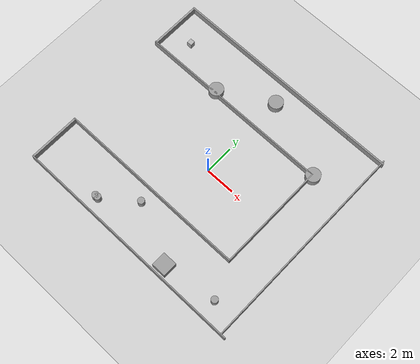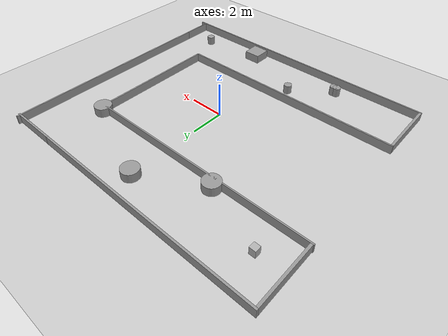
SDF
<sdf version="1.6">
 <world name="rubi_gazebo_legacy_policy_mid360_imu_world">
  <physics name="default_physics" default="1" type="ode">
   <max_step_size>0.002</max_step_size>
   <real_time_factor>1</real_time_factor>
   <real_time_update_rate>500</real_time_update_rate>
   <ode>
    <solver>
     <type>quick</type>
     <iters>100</iters>
     <sor>1.0</sor>
     <use_dynamic_moi_rescaling>false</use_dynamic_moi_rescaling>
    </solver>
   </ode>
  </physics>
  <model name="box">
   <pose>-7 5.7 0.2 0 0 0</pose>
   <static>true</static>
   <link name="box_link">
    <collision name="box_collision"><geometry><box><size>0.35 0.35 0.45</size></box></geometry></collision>
    <visual name="box_visual">
     <geometry><box><size>0.35 0.35 0.45</size></box></geometry>
     <material><ambient>0.7 0.7 0.7 1</ambient><diffuse>0.7 0.7 0.7 1</diffuse></material>
    </visual>
   </link>
  </model>
  <include><uri>model://ground_plane</uri></include>
  <include><uri>model://sun</uri></include>
  <include><uri>model://corridor_nav</uri><name>corridor_nav</name><static>true</static></include>
 </world>
</sdf>

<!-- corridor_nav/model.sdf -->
<sdf version='1.7'>
  <model name='corridor_nav'>
    <link name='link_0'>
      <inertial>
        <mass>0.482757</mass>
        <inertia>
          <ixx>0.528154</ixx>
          <ixy>0</ixy>
          <ixz>0</ixz>
          <iyy>0.0410034</iyy>
          <iyz>0</iyz>
          <izz>0.488698</izz>
        </inertia>
        <pose>0 0 0 0 -0 0</pose>
      </inertial>
      <pose>-8.60853 5.88257 0 0 -0 0</pose>
      <visual name='visual'>
        <pose>0 0 0 0 -0 0</pose>
        <geometry>
          <box>
            <size>0.138676 3.48259 1</size>
          </box>
        </geometry>
        <material>
          <lighting>1</lighting>
          <script>
            <uri>file://media/materials/scripts/gazebo.material</uri>
            <name>Gazebo/Grey</name>
          </script>
          <shader type='pixel'/>
        </material>
        <transparency>0</transparency>
        <cast_shadows>1</cast_shadows>
      </visual>
      <collision name='collision'>
        <laser_retro>0</laser_retro>
        <max_contacts>10</max_contacts>
        <pose>0 0 0 0 -0 0</pose>
        <geometry>
          <box>
            <size>0.138676 3.48259 1</size>
          </box>
        </geometry>
        <surface>
          <friction>
            <ode>
              <mu>1</mu>
              <mu2>1</mu2>
              <fdir1>0 0 0</fdir1>
              <slip1>0</slip1>
              <slip2>0</slip2>
            </ode>
            <torsional>
              <coefficient>1</coefficient>
              <patch_radius>0</patch_radius>
              <surface_radius>0</surface_radius>
              <use_patch_radius>1</use_patch_radius>
              <ode>
                <slip>0</slip>
              </ode>
            </torsional>
          </friction>
          <bounce>
            <restitution_coefficient>0</restitution_coefficient>
            <threshold>1e+06</threshold>
          </bounce>
          <contact>
            <collide_without_contact>0</collide_without_contact>
            <collide_without_contact_bitmask>1</collide_without_contact_bitmask>
            <collide_bitmask>1</collide_bitmask>
            <ode>
              <soft_cfm>0</soft_cfm>
              <soft_erp>0.2</soft_erp>
              <kp>1e+13</kp>
              <kd>1</kd>
              <max_vel>0.01</max_vel>
              <min_depth>0</min_depth>
            </ode>
            <bullet>
              <split_impulse>1</split_impulse>
              <split_impulse_penetration_threshold>-0.01</split_impulse_penetration_threshold>
              <soft_cfm>0</soft_cfm>
              <soft_erp>0.2</soft_erp>
              <kp>1e+13</kp>
              <kd>1</kd>
            </bullet>
          </contact>
        </surface>
      </collision>
    </link>
    <link name='link_0_clone'>
      <inertial>
        <mass>0.482757</mass>
        <inertia>
          <ixx>0.528154</ixx>
          <ixy>0</ixy>
          <ixz>0</ixz>
          <iyy>0.0410034</iyy>
          <iyz>0</iyz>
          <izz>0.488698</izz>
        </inertia>
        <pose>0 0 0 0 -0 0</pose>
      </inertial>
      <pose>-8.4347 -5.1707 0 0 -0 0</pose>
      <visual name='visual'>
        <pose>0 0 0 0 -0 0</pose>
        <geometry>
          <box>
            <size>0.138676 3.48259 1</size>
          </box>
        </geometry>
        <material>
          <lighting>1</lighting>
          <script>
            <uri>file://media/materials/scripts/gazebo.material</uri>
            <name>Gazebo/Grey</name>
          </script>
          <shader type='pixel'/>
        </material>
        <transparency>0</transparency>
        <cast_shadows>1</cast_shadows>
      </visual>
      <collision name='collision'>
        <laser_retro>0</laser_retro>
        <max_contacts>10</max_contacts>
        <pose>0 0 0 0 -0 0</pose>
        <geometry>
          <box>
            <size>0.138676 3.48259 1</size>
          </box>
        </geometry>
        <surface>
          <friction>
            <ode>
              <mu>1</mu>
              <mu2>1</mu2>
              <fdir1>0 0 0</fdir1>
              <slip1>0</slip1>
              <slip2>0</slip2>
            </ode>
            <torsional>
              <coefficient>1</coefficient>
              <patch_radius>0</patch_radius>
              <surface_radius>0</surface_radius>
              <use_patch_radius>1</use_patch_radius>
              <ode>
                <slip>0</slip>
              </ode>
            </torsional>
          </friction>
          <bounce>
            <restitution_coefficient>0</restitution_coefficient>
            <threshold>1e+06</threshold>
          </bounce>
          <contact>
            <collide_without_contact>0</collide_without_contact>
            <collide_without_contact_bitmask>1</collide_without_contact_bitmask>
            <collide_bitmask>1</collide_bitmask>
            <ode>
              <soft_cfm>0</soft_cfm>
              <soft_erp>0.2</soft_erp>
              <kp>1e+13</kp>
              <kd>1</kd>
              <max_vel>0.01</max_vel>
              <min_depth>0</min_depth>
            </ode>
            <bullet>
              <split_impulse>1</split_impulse>
              <split_impulse_penetration_threshold>-0.01</split_impulse_penetration_threshold>
              <soft_cfm>0</soft_cfm>
              <soft_erp>0.2</soft_erp>
              <kp>1e+13</kp>
              <kd>1</kd>
            </bullet>
          </contact>
        </surface>
      </collision>
    </link>
    <link name='link_1'>
      <inertial>
        <mass>1.51332</mass>
        <inertia>
          <ixx>0.127668</ixx>
          <ixy>0</ixy>
          <ixz>0</ixz>
          <iyy>23.5008</iyy>
          <iyz>0</iyz>
          <izz>23.3762</izz>
        </inertia>
        <pose>0 0 0 0 -0 0</pose>
      </inertial>
      <pose>-1.8695 7.67297 0 0 -0 0</pose>
      <visual name='visual'>
        <pose>0 0 0 0 -0 0</pose>
        <geometry>
          <box>
            <size>13.6144 0.111163 1</size>
          </box>
        </geometry>
        <material>
          <lighting>1</lighting>
          <script>
            <uri>file://media/materials/scripts/gazebo.material</uri>
            <name>Gazebo/Grey</name>
          </script>
          <shader type='pixel'/>
        </material>
        <transparency>0</transparency>
        <cast_shadows>1</cast_shadows>
      </visual>
      <collision name='collision'>
        <laser_retro>0</laser_retro>
        <max_contacts>10</max_contacts>
        <pose>0 0 0 0 -0 0</pose>
        <geometry>
          <box>
            <size>13.6144 0.111163 1</size>
          </box>
        </geometry>
        <surface>
          <friction>
            <ode>
              <mu>1</mu>
              <mu2>1</mu2>
              <fdir1>0 0 0</fdir1>
              <slip1>0</slip1>
              <slip2>0</slip2>
            </ode>
            <torsional>
              <coefficient>1</coefficient>
              <patch_radius>0</patch_radius>
              <surface_radius>0</surface_radius>
              <use_patch_radius>1</use_patch_radius>
              <ode>
                <slip>0</slip>
              </ode>
            </torsional>
          </friction>
          <bounce>
            <restitution_coefficient>0</restitution_coefficient>
            <threshold>1e+06</threshold>
          </bounce>
          <contact>
            <collide_without_contact>0</collide_without_contact>
            <collide_without_contact_bitmask>1</collide_without_contact_bitmask>
            <collide_bitmask>1</collide_bitmask>
            <ode>
              <soft_cfm>0</soft_cfm>
              <soft_erp>0.2</soft_erp>
              <kp>1e+13</kp>
              <kd>1</kd>
              <max_vel>0.01</max_vel>
              <min_depth>0</min_depth>
            </ode>
            <bullet>
              <split_impulse>1</split_impulse>
              <split_impulse_penetration_threshold>-0.01</split_impulse_penetration_threshold>
              <soft_cfm>0</soft_cfm>
              <soft_erp>0.2</soft_erp>
              <kp>1e+13</kp>
              <kd>1</kd>
            </bullet>
          </contact>
        </surface>
      </collision>
    </link>
    <link name='link_2'>
      <inertial>
        <mass>0.610914</mass>
        <inertia>
          <ixx>2.91783</ixx>
          <ixy>0</ixy>
          <ixz>0</ixz>
          <iyy>0.0512465</iyy>
          <iyz>0</iyz>
          <izz>2.86726</izz>
        </inertia>
        <pose>0 0 0 0 -0 0</pose>
      </inertial>
      <pose>4.9664 0.395063 0 0 -0 0</pose>
      <visual name='visual'>
        <pose>0 0 0 0 -0 0</pose>
        <geometry>
          <box>
            <size>0.081359 7.50426 1</size>
          </box>
        </geometry>
        <material>
          <lighting>1</lighting>
          <script>
            <uri>file://media/materials/scripts/gazebo.material</uri>
            <name>Gazebo/Grey</name>
          </script>
          <shader type='pixel'/>
        </material>
        <transparency>0</transparency>
        <cast_shadows>1</cast_shadows>
      </visual>
      <collision name='collision'>
        <laser_retro>0</laser_retro>
        <max_contacts>10</max_contacts>
        <pose>0 0 0 0 -0 0</pose>
        <geometry>
          <box>
            <size>0.081359 7.50426 1</size>
          </box>
        </geometry>
        <surface>
          <friction>
            <ode>
              <mu>1</mu>
              <mu2>1</mu2>
              <fdir1>0 0 0</fdir1>
              <slip1>0</slip1>
              <slip2>0</slip2>
            </ode>
            <torsional>
              <coefficient>1</coefficient>
              <patch_radius>0</patch_radius>
              <surface_radius>0</surface_radius>
              <use_patch_radius>1</use_patch_radius>
              <ode>
                <slip>0</slip>
              </ode>
            </torsional>
          </friction>
          <bounce>
            <restitution_coefficient>0</restitution_coefficient>
            <threshold>1e+06</threshold>
          </bounce>
          <contact>
            <collide_without_contact>0</collide_without_contact>
            <collide_without_contact_bitmask>1</collide_without_contact_bitmask>
            <collide_bitmask>1</collide_bitmask>
            <ode>
              <soft_cfm>0</soft_cfm>
              <soft_erp>0.2</soft_erp>
              <kp>1e+13</kp>
              <kd>1</kd>
              <max_vel>0.01</max_vel>
              <min_depth>0</min_depth>
            </ode>
            <bullet>
              <split_impulse>1</split_impulse>
              <split_impulse_penetration_threshold>-0.01</split_impulse_penetration_threshold>
              <soft_cfm>0</soft_cfm>
              <soft_erp>0.2</soft_erp>
              <kp>1e+13</kp>
              <kd>1</kd>
            </bullet>
          </contact>
        </surface>
      </collision>
    </link>
    <link name='link_2_clone'>
      <inertial>
        <mass>1.05888</mass>
        <inertia>
          <ixx>15.0167</ixx>
          <ixy>0</ixy>
          <ixz>0</ixz>
          <iyy>0.0888241</iyy>
          <iyz>0</iyz>
          <izz>14.9291</izz>
        </inertia>
        <pose>0 0 0 0 -0 0</pose>
      </inertial>
      <pose>7.59897 1.38547 0 0 -0 0</pose>
      <visual name='visual'>
        <pose>0 0 0 0 -0 0</pose>
        <geometry>
          <box>
            <size>0.081359 13.0069 1</size>
          </box>
        </geometry>
        <material>
          <lighting>1</lighting>
          <script>
            <uri>file://media/materials/scripts/gazebo.material</uri>
            <name>Gazebo/Grey</name>
          </script>
          <shader type='pixel'/>
        </material>
        <transparency>0</transparency>
        <cast_shadows>1</cast_shadows>
      </visual>
      <collision name='collision'>
        <laser_retro>0</laser_retro>
        <max_contacts>10</max_contacts>
        <pose>0 0 0 0 -0 0</pose>
        <geometry>
          <box>
            <size>0.081359 13.0069 1</size>
          </box>
        </geometry>
        <surface>
          <friction>
            <ode>
              <mu>1</mu>
              <mu2>1</mu2>
              <fdir1>0 0 0</fdir1>
              <slip1>0</slip1>
              <slip2>0</slip2>
            </ode>
            <torsional>
              <coefficient>1</coefficient>
              <patch_radius>0</patch_radius>
              <surface_radius>0</surface_radius>
              <use_patch_radius>1</use_patch_radius>
              <ode>
                <slip>0</slip>
              </ode>
            </torsional>
          </friction>
          <bounce>
            <restitution_coefficient>0</restitution_coefficient>
            <threshold>1e+06</threshold>
          </bounce>
          <contact>
            <collide_without_contact>0</collide_without_contact>
            <collide_without_contact_bitmask>1</collide_without_contact_bitmask>
            <collide_bitmask>1</collide_bitmask>
            <ode>
              <soft_cfm>0</soft_cfm>
              <soft_erp>0.2</soft_erp>
              <kp>1e+13</kp>
              <kd>1</kd>
              <max_vel>0.01</max_vel>
              <min_depth>0</min_depth>
            </ode>
            <bullet>
              <split_impulse>1</split_impulse>
              <split_impulse_penetration_threshold>-0.01</split_impulse_penetration_threshold>
              <soft_cfm>0</soft_cfm>
              <soft_erp>0.2</soft_erp>
              <kp>1e+13</kp>
              <kd>1</kd>
            </bullet>
          </contact>
        </surface>
      </collision>
    </link>
    <link name='link_2_clone_0'>
      <inertial>
        <mass>1.09995</mass>
        <inertia>
          <ixx>16.8252</ixx>
          <ixy>0</ixy>
          <ixz>0</ixz>
          <iyy>0.0922689</iyy>
          <iyz>0</iyz>
          <izz>16.7342</izz>
        </inertia>
        <pose>0 0 0 0 -0 0</pose>
      </inertial>
      <pose>-1.74883 -3.39728 0 0 -0 1.57102</pose>
      <visual name='visual'>
        <pose>0 0 0 0 -0 0</pose>
        <geometry>
          <box>
            <size>0.081359 13.5114 1</size>
          </box>
        </geometry>
        <material>
          <lighting>1</lighting>
          <script>
            <uri>file://media/materials/scripts/gazebo.material</uri>
            <name>Gazebo/Grey</name>
          </script>
          <shader type='pixel'/>
        </material>
        <transparency>0</transparency>
        <cast_shadows>1</cast_shadows>
      </visual>
      <collision name='collision'>
        <laser_retro>0</laser_retro>
        <max_contacts>10</max_contacts>
        <pose>0 0 0 0 -0 0</pose>
        <geometry>
          <box>
            <size>0.081359 13.5114 1</size>
          </box>
        </geometry>
        <surface>
          <friction>
            <ode>
              <mu>1</mu>
              <mu2>1</mu2>
              <fdir1>0 0 0</fdir1>
              <slip1>0</slip1>
              <slip2>0</slip2>
            </ode>
            <torsional>
              <coefficient>1</coefficient>
              <patch_radius>0</patch_radius>
              <surface_radius>0</surface_radius>
              <use_patch_radius>1</use_patch_radius>
              <ode>
                <slip>0</slip>
              </ode>
            </torsional>
          </friction>
          <bounce>
            <restitution_coefficient>0</restitution_coefficient>
            <threshold>1e+06</threshold>
          </bounce>
          <contact>
            <collide_without_contact>0</collide_without_contact>
            <collide_without_contact_bitmask>1</collide_without_contact_bitmask>
            <collide_bitmask>1</collide_bitmask>
            <ode>
              <soft_cfm>0</soft_cfm>
              <soft_erp>0.2</soft_erp>
              <kp>1e+13</kp>
              <kd>1</kd>
              <max_vel>0.01</max_vel>
              <min_depth>0</min_depth>
            </ode>
            <bullet>
              <split_impulse>1</split_impulse>
              <split_impulse_penetration_threshold>-0.01</split_impulse_penetration_threshold>
              <soft_cfm>0</soft_cfm>
              <soft_erp>0.2</soft_erp>
              <kp>1e+13</kp>
              <kd>1</kd>
            </bullet>
          </contact>
        </surface>
      </collision>
    </link>
    <link name='link_2_clone_0_clone'>
      <inertial>
        <mass>1.11728</mass>
        <inertia>
          <ixx>17.6303</ixx>
          <ixy>0</ixy>
          <ixz>0</ixz>
          <iyy>0.0937231</iyy>
          <iyz>0</iyz>
          <izz>17.5379</izz>
        </inertia>
        <pose>0 0 0 0 -0 0</pose>
      </inertial>
      <pose>-1.85384 4.10094 0 0 -0 1.57102</pose>
      <visual name='visual'>
        <pose>0 0 0 0 -0 0</pose>
        <geometry>
          <box>
            <size>0.081359 13.7243 1</size>
          </box>
        </geometry>
        <material>
          <lighting>1</lighting>
          <script>
            <uri>file://media/materials/scripts/gazebo.material</uri>
            <name>Gazebo/Grey</name>
          </script>
          <shader type='pixel'/>
        </material>
        <transparency>0</transparency>
        <cast_shadows>1</cast_shadows>
      </visual>
      <collision name='collision'>
        <laser_retro>0</laser_retro>
        <max_contacts>10</max_contacts>
        <pose>0 0 0 0 -0 0</pose>
        <geometry>
          <box>
            <size>0.081359 13.7243 1</size>
          </box>
        </geometry>
        <surface>
          <friction>
            <ode>
              <mu>1</mu>
              <mu2>1</mu2>
              <fdir1>0 0 0</fdir1>
              <slip1>0</slip1>
              <slip2>0</slip2>
            </ode>
            <torsional>
              <coefficient>1</coefficient>
              <patch_radius>0</patch_radius>
              <surface_radius>0</surface_radius>
              <use_patch_radius>1</use_patch_radius>
              <ode>
                <slip>0</slip>
              </ode>
            </torsional>
          </friction>
          <bounce>
            <restitution_coefficient>0</restitution_coefficient>
            <threshold>1e+06</threshold>
          </bounce>
          <contact>
            <collide_without_contact>0</collide_without_contact>
            <collide_without_contact_bitmask>1</collide_without_contact_bitmask>
            <collide_bitmask>1</collide_bitmask>
            <ode>
              <soft_cfm>0</soft_cfm>
              <soft_erp>0.2</soft_erp>
              <kp>1e+13</kp>
              <kd>1</kd>
              <max_vel>0.01</max_vel>
              <min_depth>0</min_depth>
            </ode>
            <bullet>
              <split_impulse>1</split_impulse>
              <split_impulse_penetration_threshold>-0.01</split_impulse_penetration_threshold>
              <soft_cfm>0</soft_cfm>
              <soft_erp>0.2</soft_erp>
              <kp>1e+13</kp>
              <kd>1</kd>
            </bullet>
          </contact>
        </surface>
      </collision>
    </link>
    <link name='link_2_clone_0_clone_0'>
      <inertial>
        <mass>1.33979</mass>
        <inertia>
          <ixx>30.3516</ixx>
          <ixy>0</ixy>
          <ixz>0</ixz>
          <iyy>0.112388</iyy>
          <iyz>0</iyz>
          <izz>30.2407</izz>
        </inertia>
        <pose>0 0 0 0 -0 0</pose>
      </inertial>
      <pose>-0.275326 -6.94262 0 0 -0 1.57102</pose>
      <visual name='visual'>
        <pose>0 0 0 0 -0 0</pose>
        <geometry>
          <box>
            <size>0.081359 16.4575 1</size>
          </box>
        </geometry>
        <material>
          <lighting>1</lighting>
          <script>
            <uri>file://media/materials/scripts/gazebo.material</uri>
            <name>Gazebo/Grey</name>
          </script>
          <shader type='pixel'/>
        </material>
        <transparency>0</transparency>
        <cast_shadows>1</cast_shadows>
      </visual>
      <collision name='collision'>
        <laser_retro>0</laser_retro>
        <max_contacts>10</max_contacts>
        <pose>0 0 0 0 -0 0</pose>
        <geometry>
          <box>
            <size>0.081359 16.4575 1</size>
          </box>
        </geometry>
        <surface>
          <friction>
            <ode>
              <mu>1</mu>
              <mu2>1</mu2>
              <fdir1>0 0 0</fdir1>
              <slip1>0</slip1>
              <slip2>0</slip2>
            </ode>
            <torsional>
              <coefficient>1</coefficient>
              <patch_radius>0</patch_radius>
              <surface_radius>0</surface_radius>
              <use_patch_radius>1</use_patch_radius>
              <ode>
                <slip>0</slip>
              </ode>
            </torsional>
          </friction>
          <bounce>
            <restitution_coefficient>0</restitution_coefficient>
            <threshold>1e+06</threshold>
          </bounce>
          <contact>
            <collide_without_contact>0</collide_without_contact>
            <collide_without_contact_bitmask>1</collide_without_contact_bitmask>
            <collide_bitmask>1</collide_bitmask>
            <ode>
              <soft_cfm>0</soft_cfm>
              <soft_erp>0.2</soft_erp>
              <kp>1e+13</kp>
              <kd>1</kd>
              <max_vel>0.01</max_vel>
              <min_depth>0</min_depth>
            </ode>
            <bullet>
              <split_impulse>1</split_impulse>
              <split_impulse_penetration_threshold>-0.01</split_impulse_penetration_threshold>
              <soft_cfm>0</soft_cfm>
              <soft_erp>0.2</soft_erp>
              <kp>1e+13</kp>
              <kd>1</kd>
            </bullet>
          </contact>
        </surface>
      </collision>
    </link>
    <link name='link_3'>
      <inertial>
        <mass>0.309311</mass>
        <inertia>
          <ixx>0.0260771</ixx>
          <ixy>0</ixy>
          <ixz>0</ixz>
          <iyy>0.236576</iyy>
          <iyz>0</iyz>
          <izz>0.211101</izz>
        </inertia>
        <pose>0 0 0 0 -0 0</pose>
      </inertial>
      <pose>6.29362 7.66941 0 0 -0 0</pose>
      <visual name='visual'>
        <pose>0 0 0 0 -0 0</pose>
        <geometry>
          <box>
            <size>2.85975 0.108094 1</size>
          </box>
        </geometry>
        <material>
          <lighting>1</lighting>
          <script>
            <uri>file://media/materials/scripts/gazebo.material</uri>
            <name>Gazebo/Grey</name>
          </script>
          <shader type='pixel'/>
        </material>
        <transparency>0</transparency>
        <cast_shadows>1</cast_shadows>
      </visual>
      <collision name='collision'>
        <laser_retro>0</laser_retro>
        <max_contacts>10</max_contacts>
        <pose>0 0 0 0 -0 0</pose>
        <geometry>
          <box>
            <size>2.85975 0.108094 1</size>
          </box>
        </geometry>
        <surface>
          <friction>
            <ode>
              <mu>1</mu>
              <mu2>1</mu2>
              <fdir1>0 0 0</fdir1>
              <slip1>0</slip1>
              <slip2>0</slip2>
            </ode>
            <torsional>
              <coefficient>1</coefficient>
              <patch_radius>0</patch_radius>
              <surface_radius>0</surface_radius>
              <use_patch_radius>1</use_patch_radius>
              <ode>
                <slip>0</slip>
              </ode>
            </torsional>
          </friction>
          <bounce>
            <restitution_coefficient>0</restitution_coefficient>
            <threshold>1e+06</threshold>
          </bounce>
          <contact>
            <collide_without_contact>0</collide_without_contact>
            <collide_without_contact_bitmask>1</collide_without_contact_bitmask>
            <collide_bitmask>1</collide_bitmask>
            <ode>
              <soft_cfm>0</soft_cfm>
              <soft_erp>0.2</soft_erp>
              <kp>1e+13</kp>
              <kd>1</kd>
              <max_vel>0.01</max_vel>
              <min_depth>0</min_depth>
            </ode>
            <bullet>
              <split_impulse>1</split_impulse>
              <split_impulse_penetration_threshold>-0.01</split_impulse_penetration_threshold>
              <soft_cfm>0</soft_cfm>
              <soft_erp>0.2</soft_erp>
              <kp>1e+13</kp>
              <kd>1</kd>
            </bullet>
          </contact>
        </surface>
      </collision>
    </link>
    <link name='link_4'>
      <inertial>
        <mass>0.13853</mass>
        <inertia>
          <ixx>0.0496442</ixx>
          <ixy>0</ixy>
          <ixz>0</ixz>
          <iyy>0.0116113</iyy>
          <iyz>0</iyz>
          <izz>0.0381671</izz>
        </inertia>
        <pose>0 0 0 0 -0 0</pose>
      </inertial>
      <pose>7.59809 -6.00396 0 0 -0 0</pose>
      <visual name='visual'>
        <pose>0 0 0 0 -0 0</pose>
        <geometry>
          <box>
            <size>0.076251 1.81669 1</size>
          </box>
        </geometry>
        <material>
          <lighting>1</lighting>
          <script>
            <uri>file://media/materials/scripts/gazebo.material</uri>
            <name>Gazebo/Grey</name>
          </script>
          <shader type='pixel'/>
        </material>
        <transparency>0</transparency>
        <cast_shadows>1</cast_shadows>
      </visual>
      <collision name='collision'>
        <laser_retro>0</laser_retro>
        <max_contacts>10</max_contacts>
        <pose>0 0 0 0 -0 0</pose>
        <geometry>
          <box>
            <size>0.076251 1.81669 1</size>
          </box>
        </geometry>
        <surface>
          <friction>
            <ode>
              <mu>1</mu>
              <mu2>1</mu2>
              <fdir1>0 0 0</fdir1>
              <slip1>0</slip1>
              <slip2>0</slip2>
            </ode>
            <torsional>
              <coefficient>1</coefficient>
              <patch_radius>0</patch_radius>
              <surface_radius>0</surface_radius>
              <use_patch_radius>1</use_patch_radius>
              <ode>
                <slip>0</slip>
              </ode>
            </torsional>
          </friction>
          <bounce>
            <restitution_coefficient>0</restitution_coefficient>
            <threshold>1e+06</threshold>
          </bounce>
          <contact>
            <collide_without_contact>0</collide_without_contact>
            <collide_without_contact_bitmask>1</collide_without_contact_bitmask>
            <collide_bitmask>1</collide_bitmask>
            <ode>
              <soft_cfm>0</soft_cfm>
              <soft_erp>0.2</soft_erp>
              <kp>1e+13</kp>
              <kd>1</kd>
              <max_vel>0.01</max_vel>
              <min_depth>0</min_depth>
            </ode>
            <bullet>
              <split_impulse>1</split_impulse>
              <split_impulse_penetration_threshold>-0.01</split_impulse_penetration_threshold>
              <soft_cfm>0</soft_cfm>
              <soft_erp>0.2</soft_erp>
              <kp>1e+13</kp>
              <kd>1</kd>
            </bullet>
          </contact>
        </surface>
      </collision>
    </link>
    <link name='link_5'>
      <inertial>
        <mass>1</mass>
        <inertia>
          <ixx>0.145833</ixx>
          <ixy>0</ixy>
          <ixz>0</ixz>
          <iyy>0.145833</iyy>
          <iyz>0</iyz>
          <izz>0.125</izz>
        </inertia>
      </inertial>
      <pose>-3.39216 4.31699 0 0 -0 0</pose>
      <visual name='visual'>
        <pose>0 0 0 0 -0 0</pose>
        <geometry>
          <cylinder>
            <radius>0.5</radius>
            <length>1</length>
          </cylinder>
        </geometry>
        <material>
          <lighting>1</lighting>
          <script>
            <uri>file://media/materials/scripts/gazebo.material</uri>
            <name>Gazebo/Grey</name>
          </script>
          <shader type='pixel'/>
        </material>
        <transparency>0</transparency>
        <cast_shadows>1</cast_shadows>
      </visual>
      <collision name='collision'>
        <laser_retro>0</laser_retro>
        <max_contacts>10</max_contacts>
        <pose>0 0 0 0 -0 0</pose>
        <geometry>
          <cylinder>
            <radius>0.5</radius>
            <length>1</length>
          </cylinder>
        </geometry>
        <surface>
          <friction>
            <ode>
              <mu>1</mu>
              <mu2>1</mu2>
              <fdir1>0 0 0</fdir1>
              <slip1>0</slip1>
              <slip2>0</slip2>
            </ode>
            <torsional>
              <coefficient>1</coefficient>
              <patch_radius>0</patch_radius>
              <surface_radius>0</surface_radius>
              <use_patch_radius>1</use_patch_radius>
              <ode>
                <slip>0</slip>
              </ode>
            </torsional>
          </friction>
          <bounce>
            <restitution_coefficient>0</restitution_coefficient>
            <threshold>1e+06</threshold>
          </bounce>
          <contact>
            <collide_without_contact>0</collide_without_contact>
            <collide_without_contact_bitmask>1</collide_without_contact_bitmask>
            <collide_bitmask>1</collide_bitmask>
            <ode>
              <soft_cfm>0</soft_cfm>
              <soft_erp>0.2</soft_erp>
              <kp>1e+13</kp>
              <kd>1</kd>
              <max_vel>0.01</max_vel>
              <min_depth>0</min_depth>
            </ode>
            <bullet>
              <split_impulse>1</split_impulse>
              <split_impulse_penetration_threshold>-0.01</split_impulse_penetration_threshold>
              <soft_cfm>0</soft_cfm>
              <soft_erp>0.2</soft_erp>
              <kp>1e+13</kp>
              <kd>1</kd>
            </bullet>
          </contact>
        </surface>
      </collision>
    </link>
    <link name='link_6'>
      <inertial>
        <mass>1</mass>
        <inertia>
          <ixx>0.145833</ixx>
          <ixy>0</ixy>
          <ixz>0</ixz>
          <iyy>0.145833</iyy>
          <iyz>0</iyz>
          <izz>0.125</izz>
        </inertia>
      </inertial>
      <pose>0.014935 6.27336 0 0 -0 0</pose>
      <visual name='visual'>
        <pose>0 0 0 0 -0 0</pose>
        <geometry>
          <cylinder>
            <radius>0.5</radius>
            <length>1</length>
          </cylinder>
        </geometry>
        <material>
          <lighting>1</lighting>
          <script>
            <uri>file://media/materials/scripts/gazebo.material</uri>
            <name>Gazebo/Grey</name>
          </script>
          <shader type='pixel'/>
        </material>
        <transparency>0</transparency>
        <cast_shadows>1</cast_shadows>
      </visual>
      <collision name='collision'>
        <laser_retro>0</laser_retro>
        <max_contacts>10</max_contacts>
        <pose>0 0 0 0 -0 0</pose>
        <geometry>
          <cylinder>
            <radius>0.5</radius>
            <length>1</length>
          </cylinder>
        </geometry>
        <surface>
          <friction>
            <ode>
              <mu>1</mu>
              <mu2>1</mu2>
              <fdir1>0 0 0</fdir1>
              <slip1>0</slip1>
              <slip2>0</slip2>
            </ode>
            <torsional>
              <coefficient>1</coefficient>
              <patch_radius>0</patch_radius>
              <surface_radius>0</surface_radius>
              <use_patch_radius>1</use_patch_radius>
              <ode>
                <slip>0</slip>
              </ode>
            </torsional>
          </friction>
          <bounce>
            <restitution_coefficient>0</restitution_coefficient>
            <threshold>1e+06</threshold>
          </bounce>
          <contact>
            <collide_without_contact>0</collide_without_contact>
            <collide_without_contact_bitmask>1</collide_without_contact_bitmask>
            <collide_bitmask>1</collide_bitmask>
            <ode>
              <soft_cfm>0</soft_cfm>
              <soft_erp>0.2</soft_erp>
              <kp>1e+13</kp>
              <kd>1</kd>
              <max_vel>0.01</max_vel>
              <min_depth>0</min_depth>
            </ode>
            <bullet>
              <split_impulse>1</split_impulse>
              <split_impulse_penetration_threshold>-0.01</split_impulse_penetration_threshold>
              <soft_cfm>0</soft_cfm>
              <soft_erp>0.2</soft_erp>
              <kp>1e+13</kp>
              <kd>1</kd>
            </bullet>
          </contact>
        </surface>
      </collision>
    </link>
    <link name='link_6_clone'>
      <inertial>
        <mass>1</mass>
        <inertia>
          <ixx>0.145833</ixx>
          <ixy>0</ixy>
          <ixz>0</ixz>
          <iyy>0.145833</iyy>
          <iyz>0</iyz>
          <izz>0.125</izz>
        </inertia>
      </inertial>
      <pose>5.01628 4.14761 0 0 -0 0</pose>
      <visual name='visual'>
        <pose>0 0 0 0 -0 0</pose>
        <geometry>
          <cylinder>
            <radius>0.5</radius>
            <length>1</length>
          </cylinder>
        </geometry>
        <material>
          <lighting>1</lighting>
          <script>
            <uri>file://media/materials/scripts/gazebo.material</uri>
            <name>Gazebo/Grey</name>
          </script>
          <shader type='pixel'/>
        </material>
        <transparency>0</transparency>
        <cast_shadows>1</cast_shadows>
      </visual>
      <collision name='collision'>
        <laser_retro>0</laser_retro>
        <max_contacts>10</max_contacts>
        <pose>0 0 0 0 -0 0</pose>
        <geometry>
          <cylinder>
            <radius>0.5</radius>
            <length>1</length>
          </cylinder>
        </geometry>
        <surface>
          <friction>
            <ode>
              <mu>1</mu>
              <mu2>1</mu2>
              <fdir1>0 0 0</fdir1>
              <slip1>0</slip1>
              <slip2>0</slip2>
            </ode>
            <torsional>
              <coefficient>1</coefficient>
              <patch_radius>0</patch_radius>
              <surface_radius>0</surface_radius>
              <use_patch_radius>1</use_patch_radius>
              <ode>
                <slip>0</slip>
              </ode>
            </torsional>
          </friction>
          <bounce>
            <restitution_coefficient>0</restitution_coefficient>
            <threshold>1e+06</threshold>
          </bounce>
          <contact>
            <collide_without_contact>0</collide_without_contact>
            <collide_without_contact_bitmask>1</collide_without_contact_bitmask>
            <collide_bitmask>1</collide_bitmask>
            <ode>
              <soft_cfm>0</soft_cfm>
              <soft_erp>0.2</soft_erp>
              <kp>1e+13</kp>
              <kd>1</kd>
              <max_vel>0.01</max_vel>
              <min_depth>0</min_depth>
            </ode>
            <bullet>
              <split_impulse>1</split_impulse>
              <split_impulse_penetration_threshold>-0.01</split_impulse_penetration_threshold>
              <soft_cfm>0</soft_cfm>
              <soft_erp>0.2</soft_erp>
              <kp>1e+13</kp>
              <kd>1</kd>
            </bullet>
          </contact>
        </surface>
      </collision>
    </link>
    <link name='link_7'>
      <inertial>
        <mass>1</mass>
        <inertia>
          <ixx>0.166667</ixx>
          <ixy>0</ixy>
          <ixz>0</ixz>
          <iyy>0.166667</iyy>
          <iyz>0</iyz>
          <izz>0.166667</izz>
        </inertia>
      </inertial>
      <pose>2.32889 -6.2382 0 0 -0 0</pose>
      <visual name='visual'>
        <pose>0 0 0 0 -0 0</pose>
        <geometry>
          <box>
            <size>1 1 1</size>
          </box>
        </geometry>
        <material>
          <lighting>1</lighting>
          <script>
            <uri>file://media/materials/scripts/gazebo.material</uri>
            <name>Gazebo/Grey</name>
          </script>
          <shader type='pixel'/>
        </material>
        <transparency>0</transparency>
        <cast_shadows>1</cast_shadows>
      </visual>
      <collision name='collision'>
        <laser_retro>0</laser_retro>
        <max_contacts>10</max_contacts>
        <pose>0 0 0 0 -0 0</pose>
        <geometry>
          <box>
            <size>1 1 1</size>
          </box>
        </geometry>
        <surface>
          <friction>
            <ode>
              <mu>1</mu>
              <mu2>1</mu2>
              <fdir1>0 0 0</fdir1>
              <slip1>0</slip1>
              <slip2>0</slip2>
            </ode>
            <torsional>
              <coefficient>1</coefficient>
              <patch_radius>0</patch_radius>
              <surface_radius>0</surface_radius>
              <use_patch_radius>1</use_patch_radius>
              <ode>
                <slip>0</slip>
              </ode>
            </torsional>
          </friction>
          <bounce>
            <restitution_coefficient>0</restitution_coefficient>
            <threshold>1e+06</threshold>
          </bounce>
          <contact>
            <collide_without_contact>0</collide_without_contact>
            <collide_without_contact_bitmask>1</collide_without_contact_bitmask>
            <collide_bitmask>1</collide_bitmask>
            <ode>
              <soft_cfm>0</soft_cfm>
              <soft_erp>0.2</soft_erp>
              <kp>1e+13</kp>
              <kd>1</kd>
              <max_vel>0.01</max_vel>
              <min_depth>0</min_depth>
            </ode>
            <bullet>
              <split_impulse>1</split_impulse>
              <split_impulse_penetration_threshold>-0.01</split_impulse_penetration_threshold>
              <soft_cfm>0</soft_cfm>
              <soft_erp>0.2</soft_erp>
              <kp>1e+13</kp>
              <kd>1</kd>
            </bullet>
          </contact>
        </surface>
      </collision>
    </link>
    <link name='link_9'>
      <inertial>
        <mass>0.215534</mass>
        <inertia>
          <ixx>0.0208646</ixx>
          <ixy>0</ixy>
          <ixz>0</ixz>
          <iyy>0.0208646</iyy>
          <iyz>0</iyz>
          <izz>0.00580688</izz>
        </inertia>
        <pose>0 0 0 0 -0 0</pose>
      </inertial>
      <pose>-1.49827 -4.37562 0 0 -0 0</pose>
      <visual name='visual'>
        <pose>0 0 0 0 -0 0</pose>
        <geometry>
          <cylinder>
            <radius>0.232129</radius>
            <length>1</length>
          </cylinder>
        </geometry>
        <material>
          <lighting>1</lighting>
          <script>
            <uri>file://media/materials/scripts/gazebo.material</uri>
            <name>Gazebo/Grey</name>
          </script>
          <shader type='pixel'/>
        </material>
        <transparency>0</transparency>
        <cast_shadows>1</cast_shadows>
      </visual>
      <collision name='collision'>
        <laser_retro>0</laser_retro>
        <max_contacts>10</max_contacts>
        <pose>0 0 0 0 -0 0</pose>
        <geometry>
          <cylinder>
            <radius>0.232129</radius>
            <length>1</length>
          </cylinder>
        </geometry>
        <surface>
          <friction>
            <ode>
              <mu>1</mu>
              <mu2>1</mu2>
              <fdir1>0 0 0</fdir1>
              <slip1>0</slip1>
              <slip2>0</slip2>
            </ode>
            <torsional>
              <coefficient>1</coefficient>
              <patch_radius>0</patch_radius>
              <surface_radius>0</surface_radius>
              <use_patch_radius>1</use_patch_radius>
              <ode>
                <slip>0</slip>
              </ode>
            </torsional>
          </friction>
          <bounce>
            <restitution_coefficient>0</restitution_coefficient>
            <threshold>1e+06</threshold>
          </bounce>
          <contact>
            <collide_without_contact>0</collide_without_contact>
            <collide_without_contact_bitmask>1</collide_without_contact_bitmask>
            <collide_bitmask>1</collide_bitmask>
            <ode>
              <soft_cfm>0</soft_cfm>
              <soft_erp>0.2</soft_erp>
              <kp>1e+13</kp>
              <kd>1</kd>
              <max_vel>0.01</max_vel>
              <min_depth>0</min_depth>
            </ode>
            <bullet>
              <split_impulse>1</split_impulse>
              <split_impulse_penetration_threshold>-0.01</split_impulse_penetration_threshold>
              <soft_cfm>0</soft_cfm>
              <soft_erp>0.2</soft_erp>
              <kp>1e+13</kp>
              <kd>1</kd>
            </bullet>
          </contact>
        </surface>
      </collision>
    </link>
    <link name='link_9_clone'>
      <inertial>
        <mass>0.215534</mass>
        <inertia>
          <ixx>0.0208646</ixx>
          <ixy>0</ixy>
          <ixz>0</ixz>
          <iyy>0.0208646</iyy>
          <iyz>0</iyz>
          <izz>0.00580688</izz>
        </inertia>
        <pose>0 0 0 0 -0 0</pose>
      </inertial>
      <pose>-3.8036 -6.04147 0 0 -0 0</pose>
      <visual name='visual'>
        <pose>0 0 0 0 -0 0</pose>
        <geometry>
          <cylinder>
            <radius>0.232129</radius>
            <length>1</length>
          </cylinder>
        </geometry>
        <material>
          <lighting>1</lighting>
          <script>
            <uri>file://media/materials/scripts/gazebo.material</uri>
            <name>Gazebo/Grey</name>
          </script>
          <shader type='pixel'/>
        </material>
        <transparency>0</transparency>
        <cast_shadows>1</cast_shadows>
      </visual>
      <collision name='collision'>
        <laser_retro>0</laser_retro>
        <max_contacts>10</max_contacts>
        <pose>0 0 0 0 -0 0</pose>
        <geometry>
          <cylinder>
            <radius>0.232129</radius>
            <length>1</length>
          </cylinder>
        </geometry>
        <surface>
          <friction>
            <ode>
              <mu>1</mu>
              <mu2>1</mu2>
              <fdir1>0 0 0</fdir1>
              <slip1>0</slip1>
              <slip2>0</slip2>
            </ode>
            <torsional>
              <coefficient>1</coefficient>
              <patch_radius>0</patch_radius>
              <surface_radius>0</surface_radius>
              <use_patch_radius>1</use_patch_radius>
              <ode>
                <slip>0</slip>
              </ode>
            </torsional>
          </friction>
          <bounce>
            <restitution_coefficient>0</restitution_coefficient>
            <threshold>1e+06</threshold>
          </bounce>
          <contact>
            <collide_without_contact>0</collide_without_contact>
            <collide_without_contact_bitmask>1</collide_without_contact_bitmask>
            <collide_bitmask>1</collide_bitmask>
            <ode>
              <soft_cfm>0</soft_cfm>
              <soft_erp>0.2</soft_erp>
              <kp>1e+13</kp>
              <kd>1</kd>
              <max_vel>0.01</max_vel>
              <min_depth>0</min_depth>
            </ode>
            <bullet>
              <split_impulse>1</split_impulse>
              <split_impulse_penetration_threshold>-0.01</split_impulse_penetration_threshold>
              <soft_cfm>0</soft_cfm>
              <soft_erp>0.2</soft_erp>
              <kp>1e+13</kp>
              <kd>1</kd>
            </bullet>
          </contact>
        </surface>
      </collision>
    </link>
    <link name='link_9_clone_clone'>
      <inertial>
        <mass>0.215534</mass>
        <inertia>
          <ixx>0.0208646</ixx>
          <ixy>0</ixy>
          <ixz>0</ixz>
          <iyy>0.0208646</iyy>
          <iyz>0</iyz>
          <izz>0.00580688</izz>
        </inertia>
        <pose>0 0 0 0 -0 0</pose>
      </inertial>
      <pose>5.95964 -5.71626 0 0 -0 0</pose>
      <visual name='visual'>
        <pose>0 0 0 0 -0 0</pose>
        <geometry>
          <cylinder>
            <radius>0.232129</radius>
            <length>1</length>
          </cylinder>
        </geometry>
        <material>
          <lighting>1</lighting>
          <script>
            <uri>file://media/materials/scripts/gazebo.material</uri>
            <name>Gazebo/Grey</name>
          </script>
          <shader type='pixel'/>
        </material>
        <transparency>0</transparency>
        <cast_shadows>1</cast_shadows>
      </visual>
      <collision name='collision'>
        <laser_retro>0</laser_retro>
        <max_contacts>10</max_contacts>
        <pose>0 0 0 0 -0 0</pose>
        <geometry>
          <cylinder>
            <radius>0.232129</radius>
            <length>1</length>
          </cylinder>
        </geometry>
        <surface>
          <friction>
            <ode>
              <mu>1</mu>
              <mu2>1</mu2>
              <fdir1>0 0 0</fdir1>
              <slip1>0</slip1>
              <slip2>0</slip2>
            </ode>
            <torsional>
              <coefficient>1</coefficient>
              <patch_radius>0</patch_radius>
              <surface_radius>0</surface_radius>
              <use_patch_radius>1</use_patch_radius>
              <ode>
                <slip>0</slip>
              </ode>
            </torsional>
          </friction>
          <bounce>
            <restitution_coefficient>0</restitution_coefficient>
            <threshold>1e+06</threshold>
          </bounce>
          <contact>
            <collide_without_contact>0</collide_without_contact>
            <collide_without_contact_bitmask>1</collide_without_contact_bitmask>
            <collide_bitmask>1</collide_bitmask>
            <ode>
              <soft_cfm>0</soft_cfm>
              <soft_erp>0.2</soft_erp>
              <kp>1e+13</kp>
              <kd>1</kd>
              <max_vel>0.01</max_vel>
              <min_depth>0</min_depth>
            </ode>
            <bullet>
              <split_impulse>1</split_impulse>
              <split_impulse_penetration_threshold>-0.01</split_impulse_penetration_threshold>
              <soft_cfm>0</soft_cfm>
              <soft_erp>0.2</soft_erp>
              <kp>1e+13</kp>
              <kd>1</kd>
            </bullet>
          </contact>
        </surface>
      </collision>
    </link>
    <link name='link_9_clone_clone_0'>
      <inertial>
        <mass>0.215534</mass>
        <inertia>
          <ixx>0.0208646</ixx>
          <ixy>0</ixy>
          <ixz>0</ixz>
          <iyy>0.0208646</iyy>
          <iyz>0</iyz>
          <izz>0.00580688</izz>
        </inertia>
        <pose>0 0 0 0 -0 0</pose>
      </inertial>
      <pose>-3.62583 -6.03818 0 0 -0 0</pose>
      <visual name='visual'>
        <pose>0 0 0 0 -0 0</pose>
        <geometry>
          <cylinder>
            <radius>0.232129</radius>
            <length>1</length>
          </cylinder>
        </geometry>
        <material>
          <lighting>1</lighting>
          <script>
            <uri>file://media/materials/scripts/gazebo.material</uri>
            <name>Gazebo/Grey</name>
          </script>
          <shader type='pixel'/>
        </material>
        <transparency>0</transparency>
        <cast_shadows>1</cast_shadows>
      </visual>
      <collision name='collision'>
        <laser_retro>0</laser_retro>
        <max_contacts>10</max_contacts>
        <pose>0 0 0 0 -0 0</pose>
        <geometry>
          <cylinder>
            <radius>0.232129</radius>
            <length>1</length>
          </cylinder>
        </geometry>
        <surface>
          <friction>
            <ode>
              <mu>1</mu>
              <mu2>1</mu2>
              <fdir1>0 0 0</fdir1>
              <slip1>0</slip1>
              <slip2>0</slip2>
            </ode>
            <torsional>
              <coefficient>1</coefficient>
              <patch_radius>0</patch_radius>
              <surface_radius>0</surface_radius>
              <use_patch_radius>1</use_patch_radius>
              <ode>
                <slip>0</slip>
              </ode>
            </torsional>
          </friction>
          <bounce>
            <restitution_coefficient>0</restitution_coefficient>
            <threshold>1e+06</threshold>
          </bounce>
          <contact>
            <collide_without_contact>0</collide_without_contact>
            <collide_without_contact_bitmask>1</collide_without_contact_bitmask>
            <collide_bitmask>1</collide_bitmask>
            <ode>
              <soft_cfm>0</soft_cfm>
              <soft_erp>0.2</soft_erp>
              <kp>1e+13</kp>
              <kd>1</kd>
              <max_vel>0.01</max_vel>
              <min_depth>0</min_depth>
            </ode>
            <bullet>
              <split_impulse>1</split_impulse>
              <split_impulse_penetration_threshold>-0.01</split_impulse_penetration_threshold>
              <soft_cfm>0</soft_cfm>
              <soft_erp>0.2</soft_erp>
              <kp>1e+13</kp>
              <kd>1</kd>
            </bullet>
          </contact>
        </surface>
      </collision>
    </link>
    <static>true</static>
    <allow_auto_disable>1</allow_auto_disable>
  </model>
</sdf>
